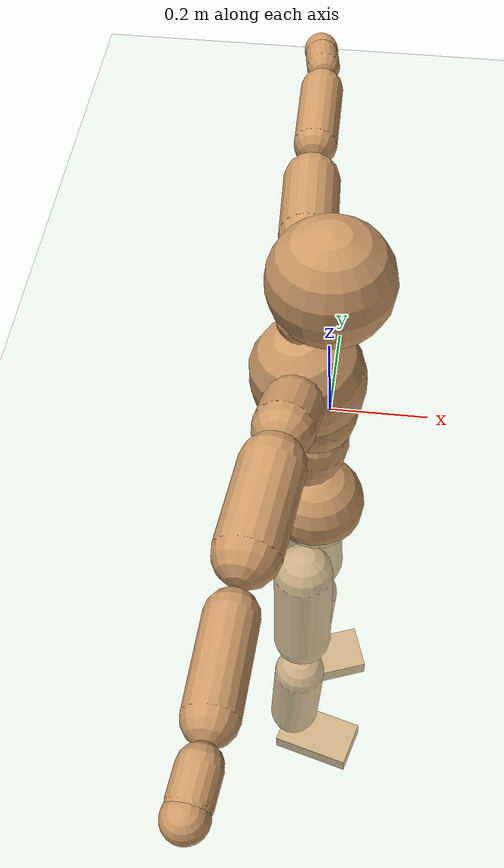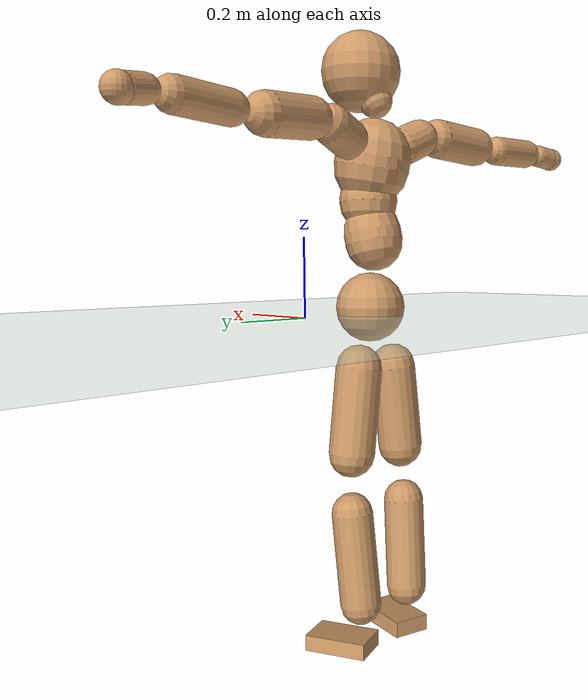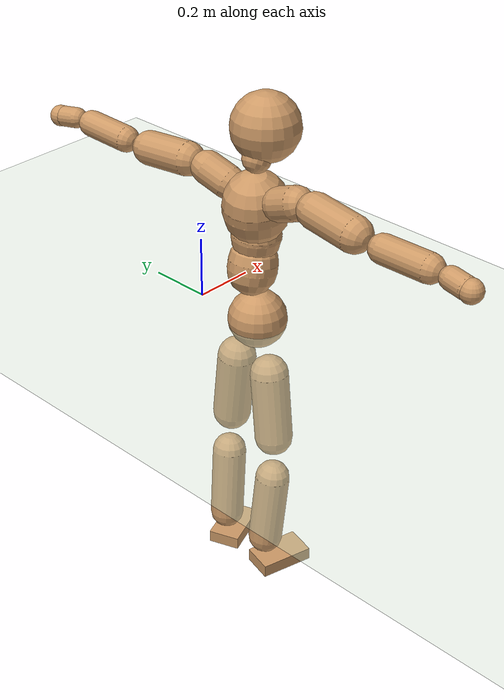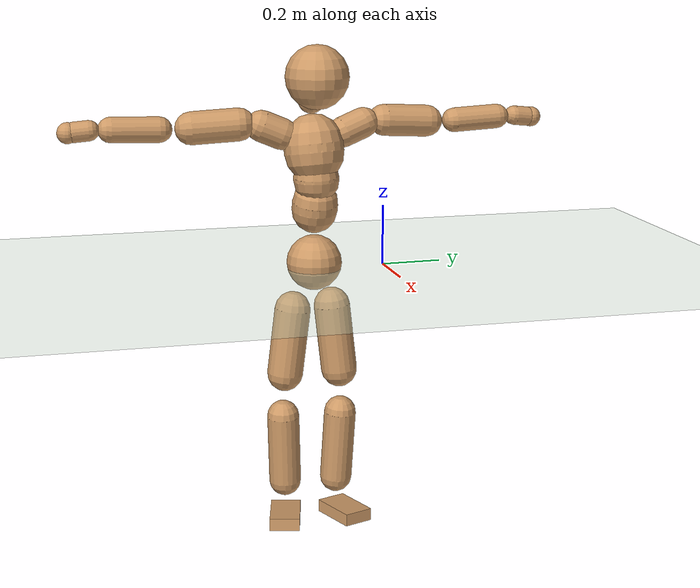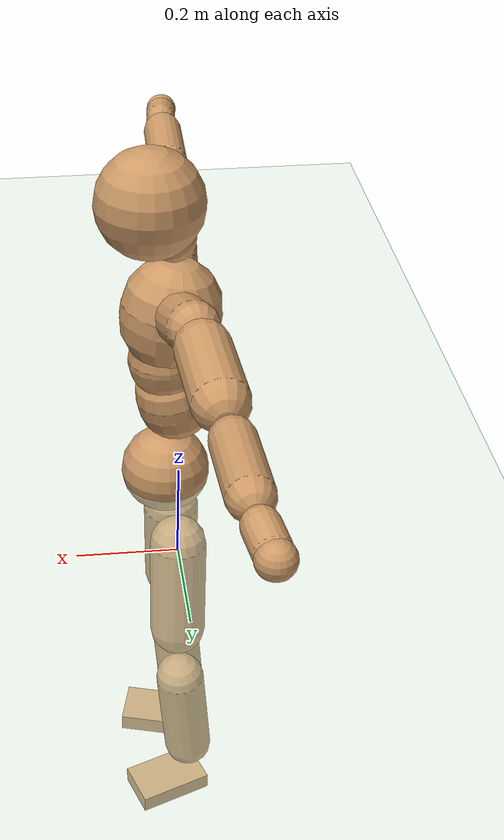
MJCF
<mujoco model="humanoid">
  <compiler coordinate="local" angle="radian"/>
  <default>
    <joint damping="0.0" armature="0.01" stiffness="0.0" limited="true"/>
    <geom conaffinity="1" condim="3" contype="7" margin="0.001" rgba="0.8 0.6 .4 1"/>
  </default>
  <asset>
    <texture type="skybox" builtin="gradient" rgb1=".4 .5 .6" rgb2="0 0 0" width="100" height="100"/>
    <texture builtin="flat" height="1278" mark="cross" markrgb="1 1 1" name="texgeom" random="0.01" rgb1="0.8 0.6 0.4" rgb2="0.8 0.6 0.4" type="cube" width="127"/>
    <texture builtin="checker" height="100" name="texplane" rgb1="0 0 0" rgb2="0.8 0.8 0.8" type="2d" width="100"/>
    <material name="MatPlane" reflectance="0.5" shininess="1" specular="1" texrepeat="60 60" texture="texplane"/>
    <material name="geom" texture="texgeom" texuniform="true"/>
  </asset>
  <worldbody>
    <light cutoff="100" diffuse="1 1 1" dir="-0 0 -1.3" directional="true" exponent="1" pos="0 0 1.3" specular=".1 .1 .1"/>
    <geom conaffinity="1" condim="3" name="floor" pos="0 0 0" rgba="0.8 0.9 0.8 1" size="100 100 .2" type="plane" material="MatPlane"/>
    <body name="Pelvis" pos="0.0002 -0.2385 0.0187">
      <freejoint name="Pelvis"/>
      <geom type="sphere" contype="1" conaffinity="1" density="500" size="0.0923" pos="0.0000 0.0000 0.0000" name="Pelvis"/>
      <body name="L_Hip" pos="-0.0217 0.0583 -0.0806">
        <joint name="L_Hip_x" type="hinge" pos="0 0 0" axis="1 0 0" stiffness="800" damping="80" armature="0.02" range="-180.0000 180.0000"/>
        <joint name="L_Hip_y" type="hinge" pos="0 0 0" axis="0 1 0" stiffness="800" damping="80" armature="0.02" range="-180.0000 180.0000"/>
        <joint name="L_Hip_z" type="hinge" pos="0 0 0" axis="0 0 1" stiffness="800" damping="80" armature="0.02" range="-180.0000 180.0000"/>
        <geom type="capsule" contype="1" conaffinity="1" density="500" fromto="0.0008 0.0087 -0.0757 0.0034 0.0346 -0.3027" size="0.0607" name="L_Hip"/>
        <body name="L_Knee" pos="0.0042 0.0433 -0.3784">
          <joint name="L_Knee_x" type="hinge" pos="0 0 0" axis="1 0 0" stiffness="800" damping="80" armature="0.02" range="-180.0000 180.0000"/>
          <joint name="L_Knee_y" type="hinge" pos="0 0 0" axis="0 1 0" stiffness="800" damping="80" armature="0.02" range="-180.0000 180.0000"/>
          <joint name="L_Knee_z" type="hinge" pos="0 0 0" axis="0 0 1" stiffness="800" damping="80" armature="0.02" range="-180.0000 180.0000"/>
          <geom type="capsule" contype="1" conaffinity="1" density="500" fromto="-0.0073 -0.0027 -0.0810 -0.0293 -0.0108 -0.3240" size="0.0544" name="L_Knee"/>
          <body name="L_Ankle" pos="-0.0367 -0.0135 -0.405">
            <joint name="L_Ankle_x" type="hinge" pos="0 0 0" axis="1 0 0" stiffness="800" damping="80" armature="0.02" range="-180.0000 180.0000"/>
            <joint name="L_Ankle_y" type="hinge" pos="0 0 0" axis="0 1 0" stiffness="800" damping="80" armature="0.02" range="-180.0000 180.0000"/>
            <joint name="L_Ankle_z" type="hinge" pos="0 0 0" axis="0 0 1" stiffness="800" damping="80" armature="0.02" range="-180.0000 180.0000"/>
            <geom type="box" contype="1" conaffinity="1" density="500" pos="0.0588 0.0213 -0.0292" size="0.0844 0.0517 0.0209" quat="0.9849 0.0000 0.0000 0.1731" name="L_Ankle"/>
            <body name="L_Toe" pos="0.1176 0.0427 -0.0584">
              <joint name="L_Toe_x" type="hinge" pos="0 0 0" axis="1 0 0" stiffness="500" damping="50" armature="0.02" range="-180.0000 180.0000"/>
              <joint name="L_Toe_y" type="hinge" pos="0 0 0" axis="0 1 0" stiffness="500" damping="50" armature="0.02" range="-180.0000 180.0000"/>
              <joint name="L_Toe_z" type="hinge" pos="0 0 0" axis="0 0 1" stiffness="500" damping="50" armature="0.02" range="-180.0000 180.0000"/>
              <geom type="box" contype="1" conaffinity="1" density="500" pos="0.0000 0.0000 0.0297" size="0.001 0.0025 0.0011" quat="0.9841 0.0000 0.0000 0.1777" name="L_Toe"/>
            </body>
          </body>
        </body>
      </body>
      <body name="R_Hip" pos="-0.0188 -0.0608 -0.0879">
        <joint name="R_Hip_x" type="hinge" pos="0 0 0" axis="1 0 0" stiffness="800" damping="80" armature="0.02" range="-180.0000 180.0000"/>
        <joint name="R_Hip_y" type="hinge" pos="0 0 0" axis="0 1 0" stiffness="800" damping="80" armature="0.02" range="-180.0000 180.0000"/>
        <joint name="R_Hip_z" type="hinge" pos="0 0 0" axis="0 0 1" stiffness="800" damping="80" armature="0.02" range="-180.0000 180.0000"/>
        <geom type="capsule" contype="1" conaffinity="1" density="500" fromto="-0.0014 -0.0087 -0.0750 -0.0055 -0.0347 -0.2999" size="0.0602" name="R_Hip"/>
        <body name="R_Knee" pos="-0.0069 -0.0434 -0.3749">
          <joint name="R_Knee_x" type="hinge" pos="0 0 0" axis="1 0 0" stiffness="800" damping="80" armature="0.02" range="-180.0000 180.0000"/>
          <joint name="R_Knee_y" type="hinge" pos="0 0 0" axis="0 1 0" stiffness="800" damping="80" armature="0.02" range="-180.0000 180.0000"/>
          <joint name="R_Knee_z" type="hinge" pos="0 0 0" axis="0 0 1" stiffness="800" damping="80" armature="0.02" range="-180.0000 180.0000"/>
          <geom type="capsule" contype="1" conaffinity="1" density="500" fromto="-0.0067 0.0036 -0.0798 -0.0267 0.0143 -0.3194" size="0.0548" name="R_Knee"/>
          <body name="R_Ankle" pos="-0.0334 0.0178 -0.3992">
            <joint name="R_Ankle_x" type="hinge" pos="0 0 0" axis="1 0 0" stiffness="800" damping="80" armature="0.02" range="-180.0000 180.0000"/>
            <joint name="R_Ankle_y" type="hinge" pos="0 0 0" axis="0 1 0" stiffness="800" damping="80" armature="0.02" range="-180.0000 180.0000"/>
            <joint name="R_Ankle_z" type="hinge" pos="0 0 0" axis="0 0 1" stiffness="800" damping="80" armature="0.02" range="-180.0000 180.0000"/>
            <geom type="box" contype="1" conaffinity="1" density="500" pos="0.0627 -0.0166 -0.0310" size="0.0876 0.051 0.0216" quat="0.9917 0.0000 0.0000 -0.1289" name="R_Ankle"/>
            <body name="R_Toe" pos="0.1254 -0.0332 -0.062">
              <joint name="R_Toe_x" type="hinge" pos="0 0 0" axis="1 0 0" stiffness="500" damping="50" armature="0.02" range="-180.0000 180.0000"/>
              <joint name="R_Toe_y" type="hinge" pos="0 0 0" axis="0 1 0" stiffness="500" damping="50" armature="0.02" range="-180.0000 180.0000"/>
              <joint name="R_Toe_z" type="hinge" pos="0 0 0" axis="0 0 1" stiffness="500" damping="50" armature="0.02" range="-180.0000 180.0000"/>
              <geom type="box" contype="1" conaffinity="1" density="500" pos="0.0000 0.0000 0.0323" size="0.001 0.0025 0.0011" quat="0.9928 0.0000 0.0000 -0.1196" name="R_Toe"/>
            </body>
          </body>
        </body>
      </body>
      <body name="Torso" pos="-0.0311 0.0042 0.1184">
        <joint name="Torso_x" type="hinge" pos="0 0 0" axis="1 0 0" stiffness="1000" damping="100" armature="0.02" range="-180.0000 180.0000"/>
        <joint name="Torso_y" type="hinge" pos="0 0 0" axis="0 1 0" stiffness="1000" damping="100" armature="0.02" range="-180.0000 180.0000"/>
        <joint name="Torso_z" type="hinge" pos="0 0 0" axis="0 0 1" stiffness="1000" damping="100" armature="0.02" range="-180.0000 180.0000"/>
        <geom type="capsule" contype="1" conaffinity="1" density="500" fromto="0.0177 0.0024 0.0818 0.0118 0.0016 0.0545" size="0.0762" name="Torso"/>
        <body name="Spine" pos="0.0296 0.0039 0.1363">
          <joint name="Spine_x" type="hinge" pos="0 0 0" axis="1 0 0" stiffness="1000" damping="100" armature="0.02" range="-180.0000 180.0000"/>
          <joint name="Spine_y" type="hinge" pos="0 0 0" axis="0 1 0" stiffness="1000" damping="100" armature="0.02" range="-180.0000 180.0000"/>
          <joint name="Spine_z" type="hinge" pos="0 0 0" axis="0 0 1" stiffness="1000" damping="100" armature="0.02" range="-180.0000 180.0000"/>
          <geom type="capsule" contype="1" conaffinity="1" density="500" fromto="0.0016 -0.0016 0.0331 0.0011 -0.0011 0.0220" size="0.0763" name="Spine"/>
          <body name="Chest" pos="0.0027 -0.0026 0.0551">
            <joint name="Chest_x" type="hinge" pos="0 0 0" axis="1 0 0" stiffness="1000" damping="100" armature="0.02" range="-180.0000 180.0000"/>
            <joint name="Chest_y" type="hinge" pos="0 0 0" axis="0 1 0" stiffness="1000" damping="100" armature="0.02" range="-180.0000 180.0000"/>
            <joint name="Chest_z" type="hinge" pos="0 0 0" axis="0 0 1" stiffness="1000" damping="100" armature="0.02" range="-180.0000 180.0000"/>
            <geom type="capsule" contype="1" conaffinity="1" density="500" fromto="-0.0132 -0.0055 0.0861 -0.0088 -0.0036 0.0574" size="0.0996" name="Chest"/>
            <body name="Neck" pos="-0.0269 -0.0139 0.2099">
              <joint name="Neck_x" type="hinge" pos="0 0 0" axis="1 0 0" stiffness="500" damping="50" armature="0.02" range="-180.0000 180.0000"/>
              <joint name="Neck_y" type="hinge" pos="0 0 0" axis="0 1 0" stiffness="500" damping="50" armature="0.02" range="-180.0000 180.0000"/>
              <joint name="Neck_z" type="hinge" pos="0 0 0" axis="0 0 1" stiffness="500" damping="50" armature="0.02" range="-180.0000 180.0000"/>
              <geom type="capsule" contype="1" conaffinity="1" density="500" fromto="0.0111 0.0020 0.0197 0.0444 0.0079 0.0787" size="0.0448" name="Neck"/>
              <body name="Head" pos="0.0556 0.0099 0.0984">
                <joint name="Head_x" type="hinge" pos="0 0 0" axis="1 0 0" stiffness="500" damping="50" armature="0.02" range="-180.0000 180.0000"/>
                <joint name="Head_y" type="hinge" pos="0 0 0" axis="0 1 0" stiffness="500" damping="50" armature="0.02" range="-180.0000 180.0000"/>
                <joint name="Head_z" type="hinge" pos="0 0 0" axis="0 0 1" stiffness="500" damping="50" armature="0.02" range="-180.0000 180.0000"/>
                <geom type="sphere" contype="1" conaffinity="1" density="500" size="0.1052" pos="0.0000 0.0000 0.0000" name="Head"/>
              </body>
            </body>
            <body name="L_Thorax" pos="-0.0173 0.0714 0.1103">
              <joint name="L_Thorax_x" type="hinge" pos="0 0 0" axis="1 0 0" stiffness="500" damping="50" armature="0.02" range="-180.0000 180.0000"/>
              <joint name="L_Thorax_y" type="hinge" pos="0 0 0" axis="0 1 0" stiffness="500" damping="50" armature="0.02" range="-180.0000 180.0000"/>
              <joint name="L_Thorax_z" type="hinge" pos="0 0 0" axis="0 0 1" stiffness="500" damping="50" armature="0.02" range="-180.0000 180.0000"/>
              <geom type="capsule" contype="1" conaffinity="1" density="500" fromto="-0.0038 0.0244 0.0091 -0.0154 0.0976 0.0366" size="0.0512" name="L_Thorax"/>
              <body name="L_Shoulder" pos="-0.0192 0.122 0.0457">
                <joint name="L_Shoulder_x" type="hinge" pos="0 0 0" axis="1 0 0" stiffness="500" damping="50" armature="0.02" range="-720.0000 720.0000"/>
                <joint name="L_Shoulder_y" type="hinge" pos="0 0 0" axis="0 1 0" stiffness="500" damping="50" armature="0.02" range="-720.0000 720.0000"/>
                <joint name="L_Shoulder_z" type="hinge" pos="0 0 0" axis="0 0 1" stiffness="500" damping="50" armature="0.02" range="-720.0000 720.0000"/>
                <geom type="capsule" contype="1" conaffinity="1" density="500" fromto="-0.0037 0.0504 -0.0033 -0.0146 0.2017 -0.0131" size="0.0529" name="L_Shoulder"/>
                <body name="L_Elbow" pos="-0.0183 0.2521 -0.0164">
                  <joint name="L_Elbow_x" type="hinge" pos="0 0 0" axis="1 0 0" stiffness="500" damping="50" armature="0.02" range="-720.0000 720.0000"/>
                  <joint name="L_Elbow_y" type="hinge" pos="0 0 0" axis="0 1 0" stiffness="500" damping="50" armature="0.02" range="-720.0000 720.0000"/>
                  <joint name="L_Elbow_z" type="hinge" pos="0 0 0" axis="0 0 1" stiffness="500" damping="50" armature="0.02" range="-720.0000 720.0000"/>
                  <geom type="capsule" contype="1" conaffinity="1" density="500" fromto="-0.0016 0.0505 0.0023 -0.0066 0.2020 0.0091" size="0.0412" name="L_Elbow"/>
                  <body name="L_Wrist" pos="-0.0082 0.2525 0.0113">
                    <joint name="L_Wrist_x" type="hinge" pos="0 0 0" axis="1 0 0" stiffness="300" damping="30" armature="0.02" range="-180.0000 180.0000"/>
                    <joint name="L_Wrist_y" type="hinge" pos="0 0 0" axis="0 1 0" stiffness="300" damping="30" armature="0.02" range="-180.0000 180.0000"/>
                    <joint name="L_Wrist_z" type="hinge" pos="0 0 0" axis="0 0 1" stiffness="300" damping="30" armature="0.02" range="-180.0000 180.0000"/>
                    <geom type="capsule" contype="1" conaffinity="1" density="500" fromto="-0.0029 0.0164 -0.0020 -0.0117 0.0654 -0.0082" size="0.0324" name="L_Wrist"/>
                    <body name="L_Hand" pos="-0.0146 0.0818 -0.0102">
                      <joint name="L_Hand_x" type="hinge" pos="0 0 0" axis="1 0 0" stiffness="300" damping="30" armature="0.02" range="-180.0000 180.0000"/>
                      <joint name="L_Hand_y" type="hinge" pos="0 0 0" axis="0 1 0" stiffness="300" damping="30" armature="0.02" range="-180.0000 180.0000"/>
                      <joint name="L_Hand_z" type="hinge" pos="0 0 0" axis="0 0 1" stiffness="300" damping="30" armature="0.02" range="-180.0000 180.0000"/>
                      <geom type="sphere" contype="1" conaffinity="1" density="500" size="0.0337" pos="0.0000 0.0000 0.0000" name="L_Hand"/>
                    </body>
                  </body>
                </body>
              </body>
            </body>
            <body name="R_Thorax" pos="-0.0218 -0.0849 0.1101">
              <joint name="R_Thorax_x" type="hinge" pos="0 0 0" axis="1 0 0" stiffness="500" damping="50" armature="0.02" range="-180.0000 180.0000"/>
              <joint name="R_Thorax_y" type="hinge" pos="0 0 0" axis="0 1 0" stiffness="500" damping="50" armature="0.02" range="-180.0000 180.0000"/>
              <joint name="R_Thorax_z" type="hinge" pos="0 0 0" axis="0 0 1" stiffness="500" damping="50" armature="0.02" range="-180.0000 180.0000"/>
              <geom type="capsule" contype="1" conaffinity="1" density="500" fromto="-0.0016 -0.0228 0.0096 -0.0066 -0.0912 0.0383" size="0.0519" name="R_Thorax"/>
              <body name="R_Shoulder" pos="-0.0082 -0.114 0.0479">
                <joint name="R_Shoulder_x" type="hinge" pos="0 0 0" axis="1 0 0" stiffness="500" damping="50" armature="0.02" range="-720.0000 720.0000"/>
                <joint name="R_Shoulder_y" type="hinge" pos="0 0 0" axis="0 1 0" stiffness="500" damping="50" armature="0.02" range="-720.0000 720.0000"/>
                <joint name="R_Shoulder_z" type="hinge" pos="0 0 0" axis="0 0 1" stiffness="500" damping="50" armature="0.02" range="-720.0000 720.0000"/>
                <geom type="capsule" contype="1" conaffinity="1" density="500" fromto="-0.0055 -0.0512 -0.0032 -0.0221 -0.2048 -0.0127" size="0.0544" name="R_Shoulder"/>
                <body name="R_Elbow" pos="-0.0276 -0.256 -0.0159">
                  <joint name="R_Elbow_x" type="hinge" pos="0 0 0" axis="1 0 0" stiffness="500" damping="50" armature="0.02" range="-720.0000 720.0000"/>
                  <joint name="R_Elbow_y" type="hinge" pos="0 0 0" axis="0 1 0" stiffness="500" damping="50" armature="0.02" range="-720.0000 720.0000"/>
                  <joint name="R_Elbow_z" type="hinge" pos="0 0 0" axis="0 0 1" stiffness="500" damping="50" armature="0.02" range="-720.0000 720.0000"/>
                  <geom type="capsule" contype="1" conaffinity="1" density="500" fromto="-0.0012 -0.0519 0.0014 -0.0048 -0.2078 0.0057" size="0.0426" name="R_Elbow"/>
                  <body name="R_Wrist" pos="-0.006 -0.2597 0.0071">
                    <joint name="R_Wrist_x" type="hinge" pos="0 0 0" axis="1 0 0" stiffness="300" damping="30" armature="0.02" range="-180.0000 180.0000"/>
                    <joint name="R_Wrist_y" type="hinge" pos="0 0 0" axis="0 1 0" stiffness="300" damping="30" armature="0.02" range="-180.0000 180.0000"/>
                    <joint name="R_Wrist_z" type="hinge" pos="0 0 0" axis="0 0 1" stiffness="300" damping="30" armature="0.02" range="-180.0000 180.0000"/>
                    <geom type="capsule" contype="1" conaffinity="1" density="500" fromto="-0.0019 -0.0170 -0.0017 -0.0077 -0.0680 -0.0066" size="0.0336" name="R_Wrist"/>
                    <body name="R_Hand" pos="-0.0096 -0.085 -0.0083">
                      <joint name="R_Hand_x" type="hinge" pos="0 0 0" axis="1 0 0" stiffness="300" damping="30" armature="0.02" range="-180.0000 180.0000"/>
                      <joint name="R_Hand_y" type="hinge" pos="0 0 0" axis="0 1 0" stiffness="300" damping="30" armature="0.02" range="-180.0000 180.0000"/>
                      <joint name="R_Hand_z" type="hinge" pos="0 0 0" axis="0 0 1" stiffness="300" damping="30" armature="0.02" range="-180.0000 180.0000"/>
                      <geom type="sphere" contype="1" conaffinity="1" density="500" size="0.0347" pos="0.0000 0.0000 0.0000" name="R_Hand"/>
                    </body>
                  </body>
                </body>
              </body>
            </body>
          </body>
        </body>
      </body>
    </body>
  </worldbody>
  <actuator>
    <motor name="L_Hip_x" joint="L_Hip_x" gear="500"/>
    <motor name="L_Hip_y" joint="L_Hip_y" gear="500"/>
    <motor name="L_Hip_z" joint="L_Hip_z" gear="500"/>
    <motor name="L_Knee_x" joint="L_Knee_x" gear="500"/>
    <motor name="L_Knee_y" joint="L_Knee_y" gear="500"/>
    <motor name="L_Knee_z" joint="L_Knee_z" gear="500"/>
    <motor name="L_Ankle_x" joint="L_Ankle_x" gear="500"/>
    <motor name="L_Ankle_y" joint="L_Ankle_y" gear="500"/>
    <motor name="L_Ankle_z" joint="L_Ankle_z" gear="500"/>
    <motor name="L_Toe_x" joint="L_Toe_x" gear="500"/>
    <motor name="L_Toe_y" joint="L_Toe_y" gear="500"/>
    <motor name="L_Toe_z" joint="L_Toe_z" gear="500"/>
    <motor name="R_Hip_x" joint="R_Hip_x" gear="500"/>
    <motor name="R_Hip_y" joint="R_Hip_y" gear="500"/>
    <motor name="R_Hip_z" joint="R_Hip_z" gear="500"/>
    <motor name="R_Knee_x" joint="R_Knee_x" gear="500"/>
    <motor name="R_Knee_y" joint="R_Knee_y" gear="500"/>
    <motor name="R_Knee_z" joint="R_Knee_z" gear="500"/>
    <motor name="R_Ankle_x" joint="R_Ankle_x" gear="500"/>
    <motor name="R_Ankle_y" joint="R_Ankle_y" gear="500"/>
    <motor name="R_Ankle_z" joint="R_Ankle_z" gear="500"/>
    <motor name="R_Toe_x" joint="R_Toe_x" gear="500"/>
    <motor name="R_Toe_y" joint="R_Toe_y" gear="500"/>
    <motor name="R_Toe_z" joint="R_Toe_z" gear="500"/>
    <motor name="Torso_x" joint="Torso_x" gear="500"/>
    <motor name="Torso_y" joint="Torso_y" gear="500"/>
    <motor name="Torso_z" joint="Torso_z" gear="500"/>
    <motor name="Spine_x" joint="Spine_x" gear="500"/>
    <motor name="Spine_y" joint="Spine_y" gear="500"/>
    <motor name="Spine_z" joint="Spine_z" gear="500"/>
    <motor name="Chest_x" joint="Chest_x" gear="500"/>
    <motor name="Chest_y" joint="Chest_y" gear="500"/>
    <motor name="Chest_z" joint="Chest_z" gear="500"/>
    <motor name="Neck_x" joint="Neck_x" gear="500"/>
    <motor name="Neck_y" joint="Neck_y" gear="500"/>
    <motor name="Neck_z" joint="Neck_z" gear="500"/>
    <motor name="Head_x" joint="Head_x" gear="500"/>
    <motor name="Head_y" joint="Head_y" gear="500"/>
    <motor name="Head_z" joint="Head_z" gear="500"/>
    <motor name="L_Thorax_x" joint="L_Thorax_x" gear="500"/>
    <motor name="L_Thorax_y" joint="L_Thorax_y" gear="500"/>
    <motor name="L_Thorax_z" joint="L_Thorax_z" gear="500"/>
    <motor name="L_Shoulder_x" joint="L_Shoulder_x" gear="500"/>
    <motor name="L_Shoulder_y" joint="L_Shoulder_y" gear="500"/>
    <motor name="L_Shoulder_z" joint="L_Shoulder_z" gear="500"/>
    <motor name="L_Elbow_x" joint="L_Elbow_x" gear="500"/>
    <motor name="L_Elbow_y" joint="L_Elbow_y" gear="500"/>
    <motor name="L_Elbow_z" joint="L_Elbow_z" gear="500"/>
    <motor name="L_Wrist_x" joint="L_Wrist_x" gear="500"/>
    <motor name="L_Wrist_y" joint="L_Wrist_y" gear="500"/>
    <motor name="L_Wrist_z" joint="L_Wrist_z" gear="500"/>
    <motor name="L_Hand_x" joint="L_Hand_x" gear="500"/>
    <motor name="L_Hand_y" joint="L_Hand_y" gear="500"/>
    <motor name="L_Hand_z" joint="L_Hand_z" gear="500"/>
    <motor name="R_Thorax_x" joint="R_Thorax_x" gear="500"/>
    <motor name="R_Thorax_y" joint="R_Thorax_y" gear="500"/>
    <motor name="R_Thorax_z" joint="R_Thorax_z" gear="500"/>
    <motor name="R_Shoulder_x" joint="R_Shoulder_x" gear="500"/>
    <motor name="R_Shoulder_y" joint="R_Shoulder_y" gear="500"/>
    <motor name="R_Shoulder_z" joint="R_Shoulder_z" gear="500"/>
    <motor name="R_Elbow_x" joint="R_Elbow_x" gear="500"/>
    <motor name="R_Elbow_y" joint="R_Elbow_y" gear="500"/>
    <motor name="R_Elbow_z" joint="R_Elbow_z" gear="500"/>
    <motor name="R_Wrist_x" joint="R_Wrist_x" gear="500"/>
    <motor name="R_Wrist_y" joint="R_Wrist_y" gear="500"/>
    <motor name="R_Wrist_z" joint="R_Wrist_z" gear="500"/>
    <motor name="R_Hand_x" joint="R_Hand_x" gear="500"/>
    <motor name="R_Hand_y" joint="R_Hand_y" gear="500"/>
    <motor name="R_Hand_z" joint="R_Hand_z" gear="500"/>
  </actuator>
  <contact>
    <exclude body1="Torso" body2="Chest"/>
    <exclude body1="Head" body2="Chest"/>
    <exclude body1="R_Knee" body2="R_Toe"/>
    <exclude body1="R_Knee" body2="L_Ankle"/>
    <exclude body1="R_Knee" body2="L_Toe"/>
    <exclude body1="L_Knee" body2="L_Toe"/>
    <exclude body1="L_Knee" body2="R_Ankle"/>
    <exclude body1="L_Knee" body2="R_Toe"/>
    <exclude body1="L_Shoulder" body2="Chest"/>
    <exclude body1="R_Shoulder" body2="Chest"/>
  </contact>
  <sensor/>
  <size njmax="700" nconmax="700"/>
</mujoco>
